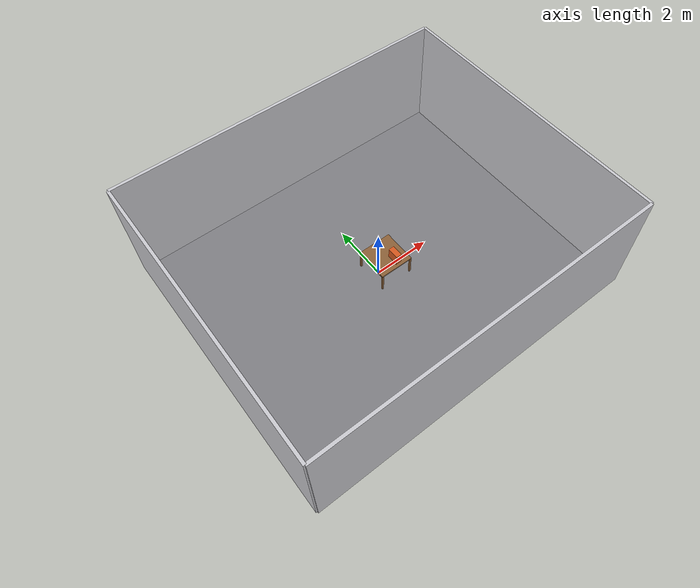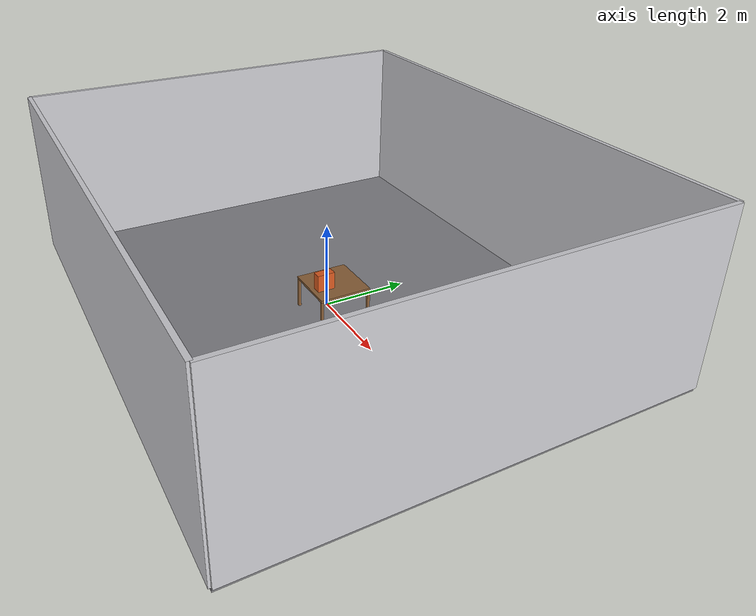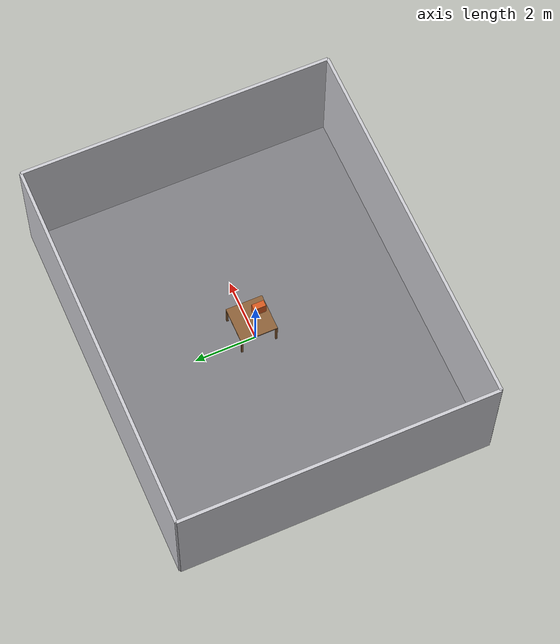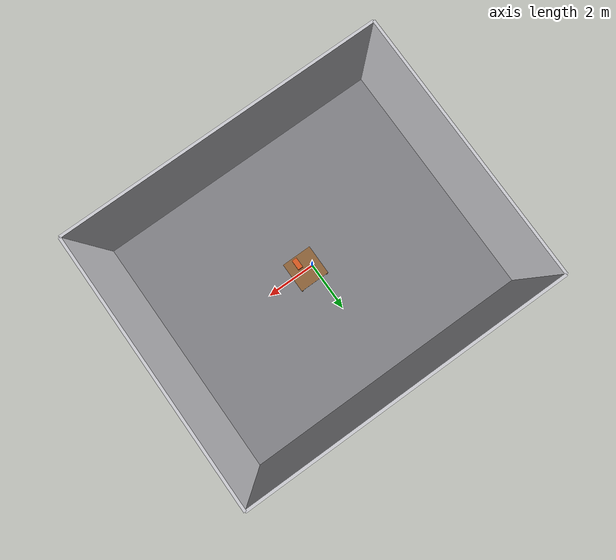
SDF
<?xml version="1.0" ?>
<sdf version="1.6">
  <world name="warehouse_box_large">
    <!-- ================= PHYSICS ================= -->
    <physics name="1ms" type="ignored">
      <max_step_size>0.001</max_step_size>
      <real_time_factor>1.0</real_time_factor>
    </physics>
    <gravity>0 0 -9.8</gravity>

    <!-- ================= SYSTEM PLUGINS ================= -->
    <plugin filename="gz-sim-physics-system"
            name="gz::sim::systems::Physics"/>
    <plugin filename="gz-sim-user-commands-system"
            name="gz::sim::systems::UserCommands"/>
    <plugin filename="gz-sim-scene-broadcaster-system"
            name="gz::sim::systems::SceneBroadcaster"/>
    <plugin filename="gz-sim-contact-system"
            name="gz::sim::systems::Contact"/>
    <plugin filename="gz-sim-sensors-system"
            name="gz::sim::systems::Sensors">
      <render_engine>ogre2</render_engine>
    </plugin>

    <!-- ================= LIGHTING ================= -->
    <light type="directional" name="sun">
      <cast_shadows>true</cast_shadows>
      <pose>0 0 10 0 0 0</pose>
      <diffuse>0.9 0.9 0.85 1</diffuse>
      <specular>0.3 0.3 0.3 1</specular>
      <attenuation>
        <range>1000</range><constant>0.9</constant>
        <linear>0.01</linear><quadratic>0.001</quadratic>
      </attenuation>
      <direction>-0.5 0.1 -0.9</direction>
    </light>
    <light type="point" name="ceiling_0">
      <pose>0 0 3.8 0 0 0</pose>
      <diffuse>0.6 0.6 0.6 1</diffuse><specular>0.1 0.1 0.1 1</specular>
      <attenuation><range>20</range><constant>0.5</constant>
        <linear>0.05</linear><quadratic>0.01</quadratic></attenuation>
      <cast_shadows>false</cast_shadows>
    </light>
    <light type="point" name="ceiling_1">
      <pose>3 3 3.8 0 0 0</pose>
      <diffuse>0.6 0.6 0.6 1</diffuse><specular>0.1 0.1 0.1 1</specular>
      <attenuation><range>20</range><constant>0.5</constant>
        <linear>0.05</linear><quadratic>0.01</quadratic></attenuation>
      <cast_shadows>false</cast_shadows>
    </light>

    <!-- ================= WAREHOUSE SHELL ================= -->
    <!-- 12 x 10 m enclosed room, 4 m tall. Arm mounts on the table at origin. -->
    <model name="warehouse">
      <static>true</static>
      <!-- Floor -->
      <link name="floor">
        <collision name="c">
          <geometry><box><size>12 10 0.1</size></box></geometry>
          <pose>0 0 -0.05 0 0 0</pose>
        </collision>
        <visual name="v">
          <geometry><box><size>12 10 0.1</size></box></geometry>
          <pose>0 0 -0.05 0 0 0</pose>
          <material>
            <ambient>0.4 0.4 0.42 1</ambient>
            <diffuse>0.5 0.5 0.52 1</diffuse>
          </material>
        </visual>
      </link>
      <!-- +X wall -->
      <link name="wall_px">
        <collision name="c"><geometry><box><size>0.1 10 4</size></box></geometry>
          <pose>6 0 2 0 0 0</pose></collision>
        <visual name="v"><geometry><box><size>0.1 10 4</size></box></geometry>
          <pose>6 0 2 0 0 0</pose>
          <material><ambient>0.7 0.7 0.72 1</ambient><diffuse>0.8 0.8 0.82 1</diffuse></material></visual>
      </link>
      <!-- -X wall -->
      <link name="wall_nx">
        <collision name="c"><geometry><box><size>0.1 10 4</size></box></geometry>
          <pose>-6 0 2 0 0 0</pose></collision>
        <visual name="v"><geometry><box><size>0.1 10 4</size></box></geometry>
          <pose>-6 0 2 0 0 0</pose>
          <material><ambient>0.7 0.7 0.72 1</ambient><diffuse>0.8 0.8 0.82 1</diffuse></material></visual>
      </link>
      <!-- +Y wall -->
      <link name="wall_py">
        <collision name="c"><geometry><box><size>12 0.1 4</size></box></geometry>
          <pose>0 5 2 0 0 0</pose></collision>
        <visual name="v"><geometry><box><size>12 0.1 4</size></box></geometry>
          <pose>0 5 2 0 0 0</pose>
          <material><ambient>0.7 0.7 0.72 1</ambient><diffuse>0.8 0.8 0.82 1</diffuse></material></visual>
      </link>
      <!-- -Y wall -->
      <link name="wall_ny">
        <collision name="c"><geometry><box><size>12 0.1 4</size></box></geometry>
          <pose>0 -5 2 0 0 0</pose></collision>
        <visual name="v"><geometry><box><size>12 0.1 4</size></box></geometry>
          <pose>0 -5 2 0 0 0</pose>
          <material><ambient>0.7 0.7 0.72 1</ambient><diffuse>0.8 0.8 0.82 1</diffuse></material></visual>
      </link>
    </model>

    <!-- ================= TABLE ================= -->
    <model name="table">
      <static>true</static>
      <link name="top">
        <collision name="c">
          <geometry><box><size>1.2000 1.2000 0.0500</size></box></geometry>
          <pose>0.3000 0.0000 0.7250 0 0 0</pose>
        </collision>
        <visual name="v">
          <geometry><box><size>1.2000 1.2000 0.0500</size></box></geometry>
          <pose>0.3000 0.0000 0.7250 0 0 0</pose>
          <material>
            <ambient>0.55 0.38 0.22 1</ambient>
            <diffuse>0.55 0.38 0.22 1</diffuse>
          </material>
        </visual>
      </link>
      <link name="leg_0">
        <collision name="c">
          <geometry><box><size>0.0600 0.0600 0.7000</size></box></geometry>
          <pose>-0.2700 -0.5700 0.3500 0 0 0</pose>
        </collision>
        <visual name="v">
          <geometry><box><size>0.0600 0.0600 0.7000</size></box></geometry>
          <pose>-0.2700 -0.5700 0.3500 0 0 0</pose>
          <material>
            <ambient>0.55 0.38 0.22 1</ambient>
            <diffuse>0.55 0.38 0.22 1</diffuse>
          </material>
        </visual>
      </link>
      <link name="leg_1">
        <collision name="c">
          <geometry><box><size>0.0600 0.0600 0.7000</size></box></geometry>
          <pose>-0.2700 0.5700 0.3500 0 0 0</pose>
        </collision>
        <visual name="v">
          <geometry><box><size>0.0600 0.0600 0.7000</size></box></geometry>
          <pose>-0.2700 0.5700 0.3500 0 0 0</pose>
          <material>
            <ambient>0.55 0.38 0.22 1</ambient>
            <diffuse>0.55 0.38 0.22 1</diffuse>
          </material>
        </visual>
      </link>
      <link name="leg_2">
        <collision name="c">
          <geometry><box><size>0.0600 0.0600 0.7000</size></box></geometry>
          <pose>0.8700 -0.5700 0.3500 0 0 0</pose>
        </collision>
        <visual name="v">
          <geometry><box><size>0.0600 0.0600 0.7000</size></box></geometry>
          <pose>0.8700 -0.5700 0.3500 0 0 0</pose>
          <material>
            <ambient>0.55 0.38 0.22 1</ambient>
            <diffuse>0.55 0.38 0.22 1</diffuse>
          </material>
        </visual>
      </link>
      <link name="leg_3">
        <collision name="c">
          <geometry><box><size>0.0600 0.0600 0.7000</size></box></geometry>
          <pose>0.8700 0.5700 0.3500 0 0 0</pose>
        </collision>
        <visual name="v">
          <geometry><box><size>0.0600 0.0600 0.7000</size></box></geometry>
          <pose>0.8700 0.5700 0.3500 0 0 0</pose>
          <material>
            <ambient>0.55 0.38 0.22 1</ambient>
            <diffuse>0.55 0.38 0.22 1</diffuse>
          </material>
        </visual>
      </link>
    </model>

    <!-- ================= BOX ================= -->
    <model name="box">
      <pose>0.4500 -0.3000 0.9550 0 0 0</pose>
      <link name="link">
        <inertial>
          <mass>1.0000</mass>
          <inertia>
            <ixx>0.026667</ixx><ixy>0</ixy><ixz>0</ixz>
            <iyy>0.016667</iyy><iyz>0</iyz>
            <izz>0.016667</izz>
          </inertia>
        </inertial>
        <collision name="collision">
          <geometry>
            <box><size>0.2000 0.4000 0.4000</size></box>
          </geometry>
          <surface>
            <contact>
              <collide_bitmask>0x01</collide_bitmask>
            </contact>
          </surface>
        </collision>
        <visual name="visual">
          <geometry>
            <box><size>0.2000 0.4000 0.4000</size></box>
          </geometry>
          <material>
            <ambient>0.85 0.35 0.12 1</ambient>
            <diffuse>0.85 0.35 0.12 1</diffuse>
            <specular>0.1 0.1 0.1 1</specular>
          </material>
        </visual>
      </link>
      <plugin filename="libignition-gazebo-detachable-joint-system.so"
              name="ignition::gazebo::systems::DetachableJoint">
        <parent_link>link</parent_link>
        <child_model>fr3</child_model>
        <child_link>fr3_link7</child_link>
        <detach_topic>/box/detach</detach_topic>
        <attach_topic>/box/attach</attach_topic>
        <output_topic>/box/attach_state</output_topic>
        <initial_attach>false</initial_attach>
      </plugin>
    </model>

    <!-- ================= OBSTACLE ================= -->
  </world>
</sdf>
